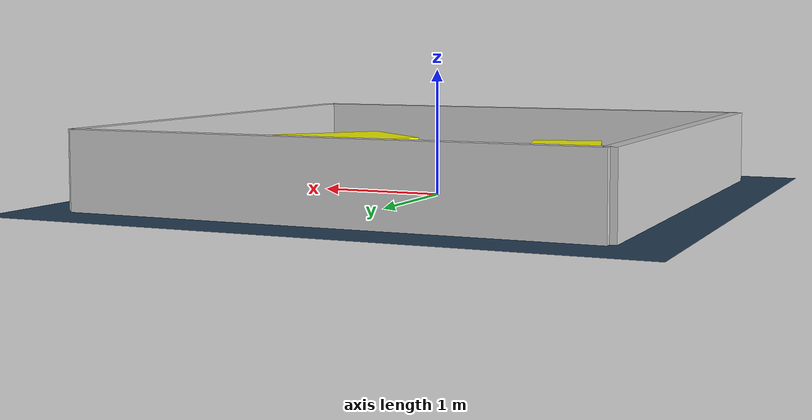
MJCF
<?xml version="1.0" ?>
<mujoco model="generated_environment">
  <option timestep="0.01" integrator="RK4" cone="elliptic"/>
  <default>
    <geom density="1"/>
  </default>
  <asset>
    <texture builtin="gradient" height="3072" rgb1="0.3 0.5 0.7" rgb2="0 0 0" type="skybox" width="512"/>
    <texture builtin="checker" height="300" mark="edge" markrgb="0.8 0.8 0.8" name="groundplane" rgb1="0.2 0.3 0.4" rgb2="0.1 0.2 0.3" type="2d" width="300"/>
    <material name="groundplane" reflectance="0.2" texrepeat="5 5" texture="groundplane" texuniform="true"/>
    <material name="robot" rgba="0.0 1.0 0.0 1"/>
  </asset>
  <worldbody>
    <light dir="0 0 -1" directional="true" pos="0 0 1.5"/>
    <geom condim="4" friction="1.0 0.005 0.001" material="groundplane" name="floor" size="0 0 0.05" type="plane"/>
    <body name="walls">
      <geom name="wall_1" condim="4" pos="-2.0 0.0 0.3" rgba="0.800000011920929 0.800000011920929 0.800000011920929 1.0" size="0.05 2.0 0.3" type="box"/>
      <geom name="wall_2" condim="4" pos="2.0 0.0 0.3" rgba="0.800000011920929 0.800000011920929 0.800000011920929 1.0" size="0.05 2.0 0.3" type="box"/>
      <geom name="wall_3" condim="4" pos="0.0 -2.0 0.3" rgba="0.800000011920929 0.800000011920929 0.800000011920929 1.0" size="2.0 0.05 0.3" type="box"/>
      <geom name="wall_4" condim="4" pos="0.0 2.0 0.3" rgba="0.800000011920929 0.800000011920929 0.800000011920929 1.0" size="2.0 0.05 0.3" type="box"/>
    </body>
    <body name="robot">
      <joint name="joint_x" type="slide" pos="0 0 0" axis="1 0 0"/>
      <joint name="joint_y" type="slide" pos="0 0 0" axis="0 1 0"/>
      <geom name="robot" type="sphere" pos="-0.5790320949460233 0.5523382531430072 0.2" size="0.05" mass="5." friction="1.0 0.005 0.0001" condim="4"/>
      <site name="sensor_ball"/>
    </body>
    <body name="obstacle_1_movable">
      <geom name="obstacle_1_movable" condim="4" pos="-0.8963049575940836 -0.5803334734086378 0.2" euler="0 0 195.62863771748061" friction="1.0 0.005 0.001" rgba="1 1 0 1" size="0.28430474192514876 0.2803307891799373 0.2" type="box" mass="0.1"/>
      <joint type="free"/>
    </body>
    <body name="obstacle_2_movable">
      <geom name="obstacle_2_movable" condim="4" pos="1.1597006883531704 -0.4903611378696475 0.2" euler="0 0 139.77821522467113" friction="1.0 0.005 0.001" rgba="1 1 0 1" size="0.4415779411727714 0.5775743053250411 0.2" type="box" mass="0.1"/>
      <joint type="free"/>
    </body>
  </worldbody>
  <actuator>
    <motor name="actuator_x" joint="joint_x" gear="1" ctrlrange="-1 1"/>
    <motor name="actuator_y" joint="joint_y" gear="1" ctrlrange="-1 1"/>
  </actuator>
</mujoco>
